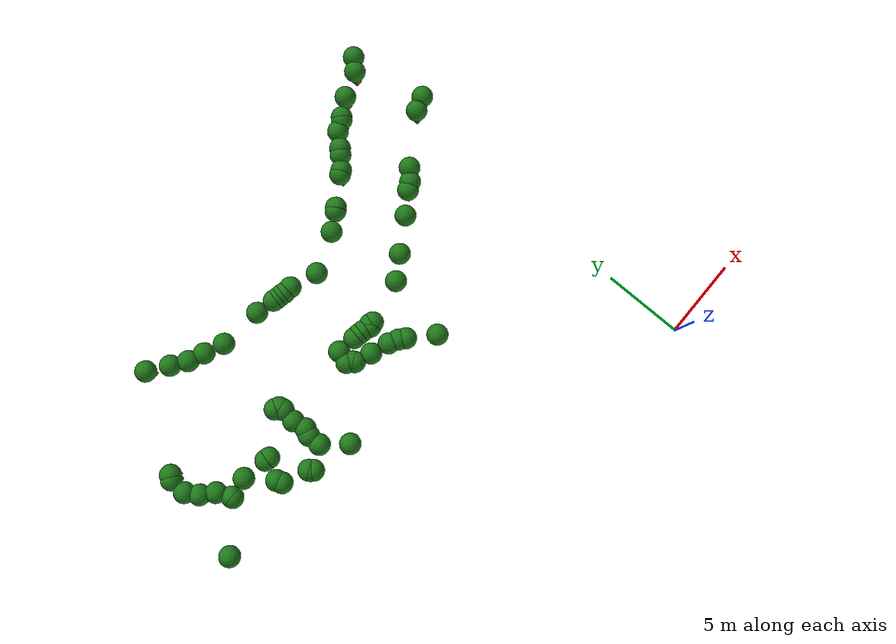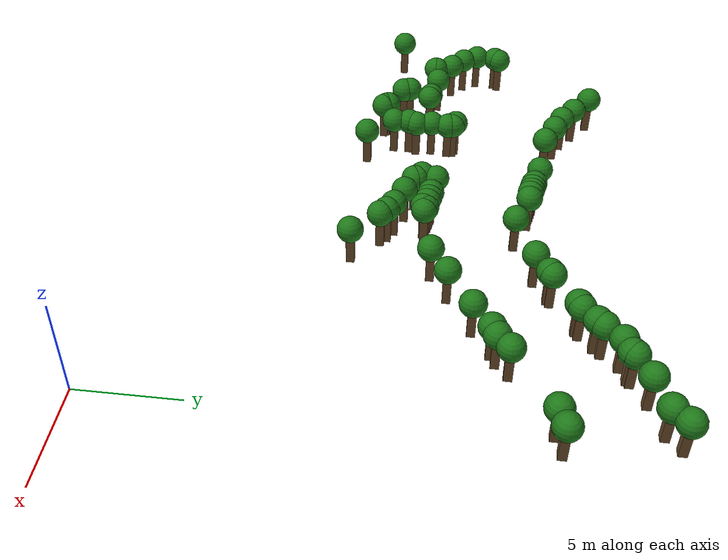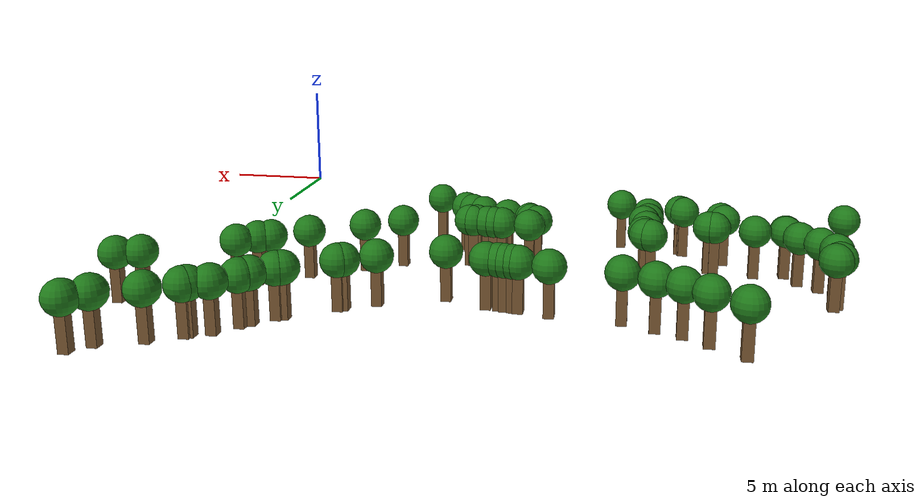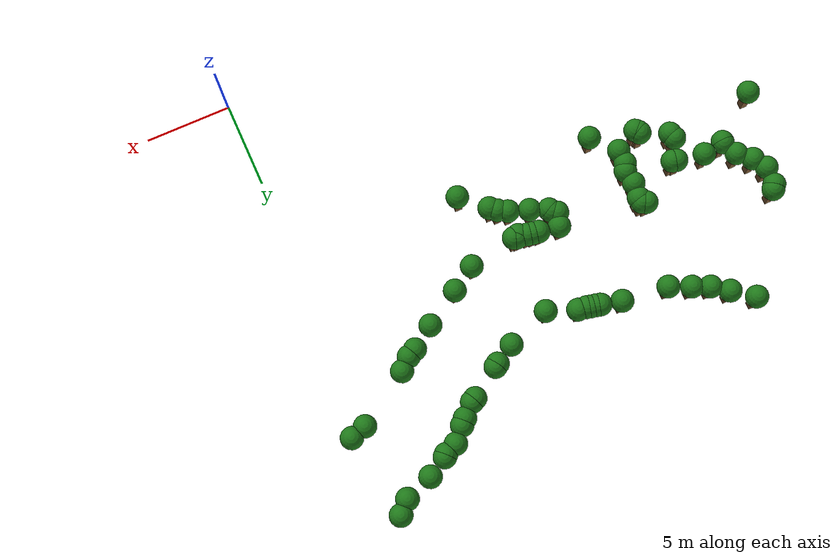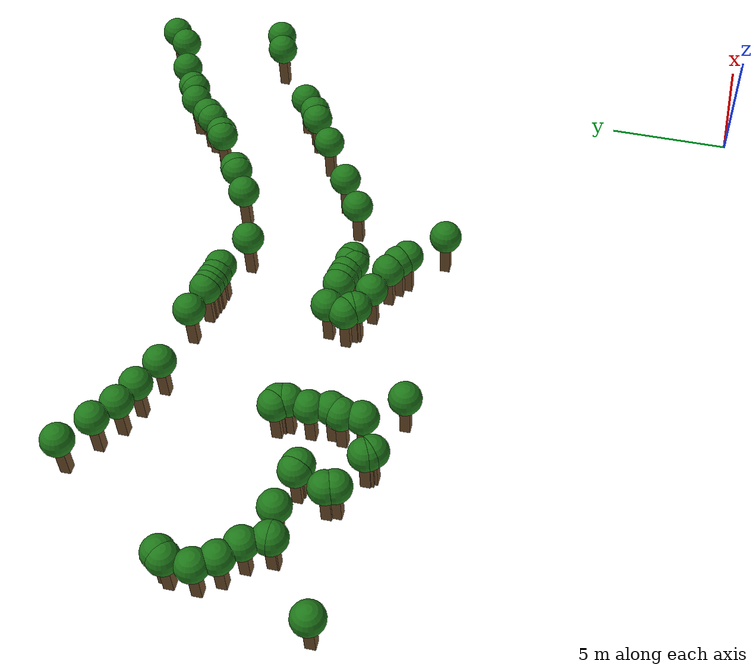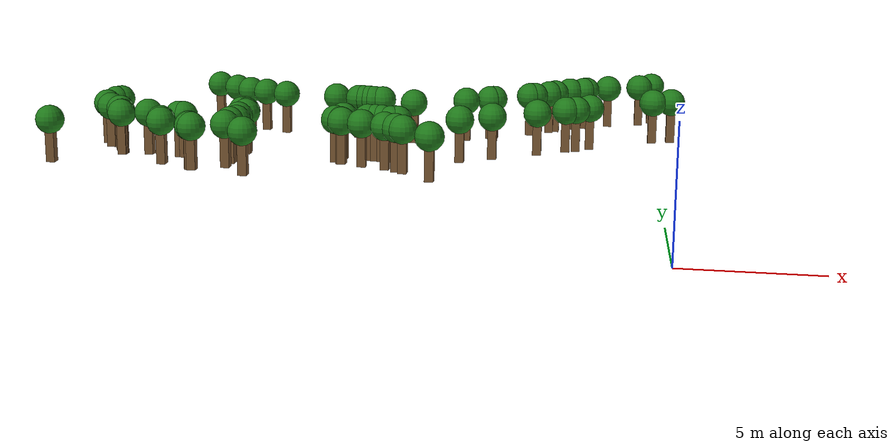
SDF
<sdf version="1.8">
 <model name="bush_trail_nav_walls">
  <static>true</static>
  <link name="trail_wall_20">
   <pose>0.205 25.601 0.750 0 0 0</pose>
   <collision name="c"><geometry><box><size>0.400 0.400 1.500</size></box></geometry></collision>
   <visual name="v">
    <geometry><box><size>0.400 0.400 1.500</size></box></geometry>
    <material><ambient>0.35 0.25 0.15 1</ambient><diffuse>0.45 0.32 0.18 1</diffuse></material>
   </visual>
   <visual name="leaves">
    <pose>0 0 1.200 0 0 0</pose>
    <geometry><sphere><radius>0.650</radius></sphere></geometry>
    <material><ambient>0.08 0.35 0.08 1</ambient><diffuse>0.12 0.48 0.10 1</diffuse></material>
   </visual>
  </link>
  <link name="trail_wall_22">
   <pose>-0.440 24.956 0.750 0 0 0</pose>
   <collision name="c"><geometry><box><size>0.400 0.400 1.500</size></box></geometry></collision>
   <visual name="v">
    <geometry><box><size>0.400 0.400 1.500</size></box></geometry>
    <material><ambient>0.35 0.25 0.15 1</ambient><diffuse>0.45 0.32 0.18 1</diffuse></material>
   </visual>
   <visual name="leaves">
    <pose>0 0 1.200 0 0 0</pose>
    <geometry><sphere><radius>0.650</radius></sphere></geometry>
    <material><ambient>0.08 0.35 0.08 1</ambient><diffuse>0.12 0.48 0.10 1</diffuse></material>
   </visual>
  </link>
  <link name="trail_wall_25">
   <pose>-2.023 24.370 0.750 0 0 0</pose>
   <collision name="c"><geometry><box><size>0.400 0.400 1.500</size></box></geometry></collision>
   <visual name="v">
    <geometry><box><size>0.400 0.400 1.500</size></box></geometry>
    <material><ambient>0.35 0.25 0.15 1</ambient><diffuse>0.45 0.32 0.18 1</diffuse></material>
   </visual>
   <visual name="leaves">
    <pose>0 0 1.200 0 0 0</pose>
    <geometry><sphere><radius>0.650</radius></sphere></geometry>
    <material><ambient>0.08 0.35 0.08 1</ambient><diffuse>0.12 0.48 0.10 1</diffuse></material>
   </visual>
  </link>
  <link name="trail_wall_29">
   <pose>-3.138 23.724 0.750 0 0 0</pose>
   <collision name="c"><geometry><box><size>0.400 0.400 1.500</size></box></geometry></collision>
   <visual name="v">
    <geometry><box><size>0.400 0.400 1.500</size></box></geometry>
    <material><ambient>0.35 0.25 0.15 1</ambient><diffuse>0.45 0.32 0.18 1</diffuse></material>
   </visual>
   <visual name="leaves">
    <pose>0 0 1.200 0 0 0</pose>
    <geometry><sphere><radius>0.650</radius></sphere></geometry>
    <material><ambient>0.08 0.35 0.08 1</ambient><diffuse>0.12 0.48 0.10 1</diffuse></material>
   </visual>
  </link>
  <link name="trail_wall_30">
   <pose>-3.255 23.607 0.750 0 0 0</pose>
   <collision name="c"><geometry><box><size>0.400 0.400 1.500</size></box></geometry></collision>
   <visual name="v">
    <geometry><box><size>0.400 0.400 1.500</size></box></geometry>
    <material><ambient>0.35 0.25 0.15 1</ambient><diffuse>0.45 0.32 0.18 1</diffuse></material>
   </visual>
   <visual name="leaves">
    <pose>0 0 1.200 0 0 0</pose>
    <geometry><sphere><radius>0.650</radius></sphere></geometry>
    <material><ambient>0.08 0.35 0.08 1</ambient><diffuse>0.12 0.48 0.10 1</diffuse></material>
   </visual>
  </link>
  <link name="trail_wall_34">
   <pose>-3.959 23.314 0.750 0 0 0</pose>
   <collision name="c"><geometry><box><size>0.400 0.400 1.500</size></box></geometry></collision>
   <visual name="v">
    <geometry><box><size>0.400 0.400 1.500</size></box></geometry>
    <material><ambient>0.35 0.25 0.15 1</ambient><diffuse>0.45 0.32 0.18 1</diffuse></material>
   </visual>
   <visual name="leaves">
    <pose>0 0 1.200 0 0 0</pose>
    <geometry><sphere><radius>0.650</radius></sphere></geometry>
    <material><ambient>0.08 0.35 0.08 1</ambient><diffuse>0.12 0.48 0.10 1</diffuse></material>
   </visual>
  </link>
  <link name="trail_wall_45">
   <pose>-22.199 22.610 0.750 0 0 0</pose>
   <collision name="c"><geometry><box><size>0.400 0.400 1.500</size></box></geometry></collision>
   <visual name="v">
    <geometry><box><size>0.400 0.400 1.500</size></box></geometry>
    <material><ambient>0.35 0.25 0.15 1</ambient><diffuse>0.45 0.32 0.18 1</diffuse></material>
   </visual>
   <visual name="leaves">
    <pose>0 0 1.200 0 0 0</pose>
    <geometry><sphere><radius>0.650</radius></sphere></geometry>
    <material><ambient>0.08 0.35 0.08 1</ambient><diffuse>0.12 0.48 0.10 1</diffuse></material>
   </visual>
  </link>
  <link name="trail_wall_46">
   <pose>-4.663 22.551 0.750 0 0 0</pose>
   <collision name="c"><geometry><box><size>0.400 0.400 1.500</size></box></geometry></collision>
   <visual name="v">
    <geometry><box><size>0.400 0.400 1.500</size></box></geometry>
    <material><ambient>0.35 0.25 0.15 1</ambient><diffuse>0.45 0.32 0.18 1</diffuse></material>
   </visual>
   <visual name="leaves">
    <pose>0 0 1.200 0 0 0</pose>
    <geometry><sphere><radius>0.650</radius></sphere></geometry>
    <material><ambient>0.08 0.35 0.08 1</ambient><diffuse>0.12 0.48 0.10 1</diffuse></material>
   </visual>
  </link>
  <link name="trail_wall_49">
   <pose>-4.956 22.258 0.750 0 0 0</pose>
   <collision name="c"><geometry><box><size>0.400 0.400 1.500</size></box></geometry></collision>
   <visual name="v">
    <geometry><box><size>0.400 0.400 1.500</size></box></geometry>
    <material><ambient>0.35 0.25 0.15 1</ambient><diffuse>0.45 0.32 0.18 1</diffuse></material>
   </visual>
   <visual name="leaves">
    <pose>0 0 1.200 0 0 0</pose>
    <geometry><sphere><radius>0.650</radius></sphere></geometry>
    <material><ambient>0.08 0.35 0.08 1</ambient><diffuse>0.12 0.48 0.10 1</diffuse></material>
   </visual>
  </link>
  <link name="trail_wall_53">
   <pose>-21.026 21.730 0.750 0 0 0</pose>
   <collision name="c"><geometry><box><size>0.400 0.400 1.500</size></box></geometry></collision>
   <visual name="v">
    <geometry><box><size>0.400 0.400 1.500</size></box></geometry>
    <material><ambient>0.35 0.25 0.15 1</ambient><diffuse>0.45 0.32 0.18 1</diffuse></material>
   </visual>
   <visual name="leaves">
    <pose>0 0 1.200 0 0 0</pose>
    <geometry><sphere><radius>0.650</radius></sphere></geometry>
    <material><ambient>0.08 0.35 0.08 1</ambient><diffuse>0.12 0.48 0.10 1</diffuse></material>
   </visual>
  </link>
  <link name="trail_wall_54">
   <pose>-5.660 21.613 0.750 0 0 0</pose>
   <collision name="c"><geometry><box><size>0.400 0.400 1.500</size></box></geometry></collision>
   <visual name="v">
    <geometry><box><size>0.400 0.400 1.500</size></box></geometry>
    <material><ambient>0.35 0.25 0.15 1</ambient><diffuse>0.45 0.32 0.18 1</diffuse></material>
   </visual>
   <visual name="leaves">
    <pose>0 0 1.200 0 0 0</pose>
    <geometry><sphere><radius>0.650</radius></sphere></geometry>
    <material><ambient>0.08 0.35 0.08 1</ambient><diffuse>0.12 0.48 0.10 1</diffuse></material>
   </visual>
  </link>
  <link name="trail_wall_55">
   <pose>-5.894 21.496 0.750 0 0 0</pose>
   <collision name="c"><geometry><box><size>0.400 0.400 1.500</size></box></geometry></collision>
   <visual name="v">
    <geometry><box><size>0.400 0.400 1.500</size></box></geometry>
    <material><ambient>0.35 0.25 0.15 1</ambient><diffuse>0.45 0.32 0.18 1</diffuse></material>
   </visual>
   <visual name="leaves">
    <pose>0 0 1.200 0 0 0</pose>
    <geometry><sphere><radius>0.650</radius></sphere></geometry>
    <material><ambient>0.08 0.35 0.08 1</ambient><diffuse>0.12 0.48 0.10 1</diffuse></material>
   </visual>
  </link>
  <link name="trail_wall_59">
   <pose>-20.147 21.085 0.750 0 0 0</pose>
   <collision name="c"><geometry><box><size>0.400 0.400 1.500</size></box></geometry></collision>
   <visual name="v">
    <geometry><box><size>0.400 0.400 1.500</size></box></geometry>
    <material><ambient>0.35 0.25 0.15 1</ambient><diffuse>0.45 0.32 0.18 1</diffuse></material>
   </visual>
   <visual name="leaves">
    <pose>0 0 1.200 0 0 0</pose>
    <geometry><sphere><radius>0.650</radius></sphere></geometry>
    <material><ambient>0.08 0.35 0.08 1</ambient><diffuse>0.12 0.48 0.10 1</diffuse></material>
   </visual>
  </link>
  <link name="trail_wall_62">
   <pose>0.968 20.792 0.750 0 0 0</pose>
   <collision name="c"><geometry><box><size>0.400 0.400 1.500</size></box></geometry></collision>
   <visual name="v">
    <geometry><box><size>0.400 0.400 1.500</size></box></geometry>
    <material><ambient>0.35 0.25 0.15 1</ambient><diffuse>0.45 0.32 0.18 1</diffuse></material>
   </visual>
   <visual name="leaves">
    <pose>0 0 1.200 0 0 0</pose>
    <geometry><sphere><radius>0.650</radius></sphere></geometry>
    <material><ambient>0.08 0.35 0.08 1</ambient><diffuse>0.12 0.48 0.10 1</diffuse></material>
   </visual>
  </link>
  <link name="trail_wall_63">
   <pose>-19.208 20.674 0.750 0 0 0</pose>
   <collision name="c"><geometry><box><size>0.400 0.400 1.500</size></box></geometry></collision>
   <visual name="v">
    <geometry><box><size>0.400 0.400 1.500</size></box></geometry>
    <material><ambient>0.35 0.25 0.15 1</ambient><diffuse>0.45 0.32 0.18 1</diffuse></material>
   </visual>
   <visual name="leaves">
    <pose>0 0 1.200 0 0 0</pose>
    <geometry><sphere><radius>0.650</radius></sphere></geometry>
    <material><ambient>0.08 0.35 0.08 1</ambient><diffuse>0.12 0.48 0.10 1</diffuse></material>
   </visual>
  </link>
  <link name="trail_wall_65">
   <pose>0.088 20.499 0.750 0 0 0</pose>
   <collision name="c"><geometry><box><size>0.400 0.400 1.500</size></box></geometry></collision>
   <visual name="v">
    <geometry><box><size>0.400 0.400 1.500</size></box></geometry>
    <material><ambient>0.35 0.25 0.15 1</ambient><diffuse>0.45 0.32 0.18 1</diffuse></material>
   </visual>
   <visual name="leaves">
    <pose>0 0 1.200 0 0 0</pose>
    <geometry><sphere><radius>0.650</radius></sphere></geometry>
    <material><ambient>0.08 0.35 0.08 1</ambient><diffuse>0.12 0.48 0.10 1</diffuse></material>
   </visual>
  </link>
  <link name="trail_wall_66">
   <pose>-7.595 20.381 0.750 0 0 0</pose>
   <collision name="c"><geometry><box><size>0.400 0.400 1.500</size></box></geometry></collision>
   <visual name="v">
    <geometry><box><size>0.400 0.400 1.500</size></box></geometry>
    <material><ambient>0.35 0.25 0.15 1</ambient><diffuse>0.45 0.32 0.18 1</diffuse></material>
   </visual>
   <visual name="leaves">
    <pose>0 0 1.200 0 0 0</pose>
    <geometry><sphere><radius>0.650</radius></sphere></geometry>
    <material><ambient>0.08 0.35 0.08 1</ambient><diffuse>0.12 0.48 0.10 1</diffuse></material>
   </visual>
  </link>
  <link name="trail_wall_67">
   <pose>-7.771 20.264 0.750 0 0 0</pose>
   <collision name="c"><geometry><box><size>0.400 0.400 1.500</size></box></geometry></collision>
   <visual name="v">
    <geometry><box><size>0.400 0.400 1.500</size></box></geometry>
    <material><ambient>0.35 0.25 0.15 1</ambient><diffuse>0.45 0.32 0.18 1</diffuse></material>
   </visual>
   <visual name="leaves">
    <pose>0 0 1.200 0 0 0</pose>
    <geometry><sphere><radius>0.650</radius></sphere></geometry>
    <material><ambient>0.08 0.35 0.08 1</ambient><diffuse>0.12 0.48 0.10 1</diffuse></material>
   </visual>
  </link>
  <link name="trail_wall_68">
   <pose>-18.035 20.147 0.750 0 0 0</pose>
   <collision name="c"><geometry><box><size>0.400 0.400 1.500</size></box></geometry></collision>
   <visual name="v">
    <geometry><box><size>0.400 0.400 1.500</size></box></geometry>
    <material><ambient>0.35 0.25 0.15 1</ambient><diffuse>0.45 0.32 0.18 1</diffuse></material>
   </visual>
   <visual name="leaves">
    <pose>0 0 1.200 0 0 0</pose>
    <geometry><sphere><radius>0.650</radius></sphere></geometry>
    <material><ambient>0.08 0.35 0.08 1</ambient><diffuse>0.12 0.48 0.10 1</diffuse></material>
   </visual>
  </link>
  <link name="trail_wall_72">
   <pose>-15.396 19.853 0.750 0 0 0</pose>
   <collision name="c"><geometry><box><size>0.400 0.400 1.500</size></box></geometry></collision>
   <visual name="v">
    <geometry><box><size>0.400 0.400 1.500</size></box></geometry>
    <material><ambient>0.35 0.25 0.15 1</ambient><diffuse>0.45 0.32 0.18 1</diffuse></material>
   </visual>
   <visual name="leaves">
    <pose>0 0 1.200 0 0 0</pose>
    <geometry><sphere><radius>0.650</radius></sphere></geometry>
    <material><ambient>0.08 0.35 0.08 1</ambient><diffuse>0.12 0.48 0.10 1</diffuse></material>
   </visual>
  </link>
  <link name="trail_wall_76">
   <pose>-8.886 19.619 0.750 0 0 0</pose>
   <collision name="c"><geometry><box><size>0.400 0.400 1.500</size></box></geometry></collision>
   <visual name="v">
    <geometry><box><size>0.400 0.400 1.500</size></box></geometry>
    <material><ambient>0.35 0.25 0.15 1</ambient><diffuse>0.45 0.32 0.18 1</diffuse></material>
   </visual>
   <visual name="leaves">
    <pose>0 0 1.200 0 0 0</pose>
    <geometry><sphere><radius>0.650</radius></sphere></geometry>
    <material><ambient>0.08 0.35 0.08 1</ambient><diffuse>0.12 0.48 0.10 1</diffuse></material>
   </visual>
  </link>
  <link name="trail_wall_77">
   <pose>-14.223 19.560 0.750 0 0 0</pose>
   <collision name="c"><geometry><box><size>0.400 0.400 1.500</size></box></geometry></collision>
   <visual name="v">
    <geometry><box><size>0.400 0.400 1.500</size></box></geometry>
    <material><ambient>0.35 0.25 0.15 1</ambient><diffuse>0.45 0.32 0.18 1</diffuse></material>
   </visual>
   <visual name="leaves">
    <pose>0 0 1.200 0 0 0</pose>
    <geometry><sphere><radius>0.650</radius></sphere></geometry>
    <material><ambient>0.08 0.35 0.08 1</ambient><diffuse>0.12 0.48 0.10 1</diffuse></material>
   </visual>
  </link>
  <link name="trail_wall_78">
   <pose>-13.988 19.501 0.750 0 0 0</pose>
   <collision name="c"><geometry><box><size>0.400 0.400 1.500</size></box></geometry></collision>
   <visual name="v">
    <geometry><box><size>0.400 0.400 1.500</size></box></geometry>
    <material><ambient>0.35 0.25 0.15 1</ambient><diffuse>0.45 0.32 0.18 1</diffuse></material>
   </visual>
   <visual name="leaves">
    <pose>0 0 1.200 0 0 0</pose>
    <geometry><sphere><radius>0.650</radius></sphere></geometry>
    <material><ambient>0.08 0.35 0.08 1</ambient><diffuse>0.12 0.48 0.10 1</diffuse></material>
   </visual>
  </link>
  <link name="trail_wall_79">
   <pose>-13.695 19.443 0.750 0 0 0</pose>
   <collision name="c"><geometry><box><size>0.400 0.400 1.500</size></box></geometry></collision>
   <visual name="v">
    <geometry><box><size>0.400 0.400 1.500</size></box></geometry>
    <material><ambient>0.35 0.25 0.15 1</ambient><diffuse>0.45 0.32 0.18 1</diffuse></material>
   </visual>
   <visual name="leaves">
    <pose>0 0 1.200 0 0 0</pose>
    <geometry><sphere><radius>0.650</radius></sphere></geometry>
    <material><ambient>0.08 0.35 0.08 1</ambient><diffuse>0.12 0.48 0.10 1</diffuse></material>
   </visual>
  </link>
  <link name="trail_wall_80">
   <pose>-13.460 19.384 0.750 0 0 0</pose>
   <collision name="c"><geometry><box><size>0.400 0.400 1.500</size></box></geometry></collision>
   <visual name="v">
    <geometry><box><size>0.400 0.400 1.500</size></box></geometry>
    <material><ambient>0.35 0.25 0.15 1</ambient><diffuse>0.45 0.32 0.18 1</diffuse></material>
   </visual>
   <visual name="leaves">
    <pose>0 0 1.200 0 0 0</pose>
    <geometry><sphere><radius>0.650</radius></sphere></geometry>
    <material><ambient>0.08 0.35 0.08 1</ambient><diffuse>0.12 0.48 0.10 1</diffuse></material>
   </visual>
  </link>
  <link name="trail_wall_81">
   <pose>-12.991 19.326 0.750 0 0 0</pose>
   <collision name="c"><geometry><box><size>0.400 0.400 1.500</size></box></geometry></collision>
   <visual name="v">
    <geometry><box><size>0.400 0.400 1.500</size></box></geometry>
    <material><ambient>0.35 0.25 0.15 1</ambient><diffuse>0.45 0.32 0.18 1</diffuse></material>
   </visual>
   <visual name="leaves">
    <pose>0 0 1.200 0 0 0</pose>
    <geometry><sphere><radius>0.650</radius></sphere></geometry>
    <material><ambient>0.08 0.35 0.08 1</ambient><diffuse>0.12 0.48 0.10 1</diffuse></material>
   </visual>
  </link>
  <link name="trail_wall_87">
   <pose>-11.349 18.680 0.750 0 0 0</pose>
   <collision name="c"><geometry><box><size>0.400 0.400 1.500</size></box></geometry></collision>
   <visual name="v">
    <geometry><box><size>0.400 0.400 1.500</size></box></geometry>
    <material><ambient>0.35 0.25 0.15 1</ambient><diffuse>0.45 0.32 0.18 1</diffuse></material>
   </visual>
   <visual name="leaves">
    <pose>0 0 1.200 0 0 0</pose>
    <geometry><sphere><radius>0.650</radius></sphere></geometry>
    <material><ambient>0.08 0.35 0.08 1</ambient><diffuse>0.12 0.48 0.10 1</diffuse></material>
   </visual>
  </link>
  <link name="trail_wall_88">
   <pose>-2.903 18.563 0.750 0 0 0</pose>
   <collision name="c"><geometry><box><size>0.400 0.400 1.500</size></box></geometry></collision>
   <visual name="v">
    <geometry><box><size>0.400 0.400 1.500</size></box></geometry>
    <material><ambient>0.35 0.25 0.15 1</ambient><diffuse>0.45 0.32 0.18 1</diffuse></material>
   </visual>
   <visual name="leaves">
    <pose>0 0 1.200 0 0 0</pose>
    <geometry><sphere><radius>0.650</radius></sphere></geometry>
    <material><ambient>0.08 0.35 0.08 1</ambient><diffuse>0.12 0.48 0.10 1</diffuse></material>
   </visual>
  </link>
  <link name="trail_wall_92">
   <pose>-3.548 17.977 0.750 0 0 0</pose>
   <collision name="c"><geometry><box><size>0.400 0.400 1.500</size></box></geometry></collision>
   <visual name="v">
    <geometry><box><size>0.400 0.400 1.500</size></box></geometry>
    <material><ambient>0.35 0.25 0.15 1</ambient><diffuse>0.45 0.32 0.18 1</diffuse></material>
   </visual>
   <visual name="leaves">
    <pose>0 0 1.200 0 0 0</pose>
    <geometry><sphere><radius>0.650</radius></sphere></geometry>
    <material><ambient>0.08 0.35 0.08 1</ambient><diffuse>0.12 0.48 0.10 1</diffuse></material>
   </visual>
  </link>
  <link name="trail_wall_93">
   <pose>-4.018 17.742 0.750 0 0 0</pose>
   <collision name="c"><geometry><box><size>0.400 0.400 1.500</size></box></geometry></collision>
   <visual name="v">
    <geometry><box><size>0.400 0.400 1.500</size></box></geometry>
    <material><ambient>0.35 0.25 0.15 1</ambient><diffuse>0.45 0.32 0.18 1</diffuse></material>
   </visual>
   <visual name="leaves">
    <pose>0 0 1.200 0 0 0</pose>
    <geometry><sphere><radius>0.650</radius></sphere></geometry>
    <material><ambient>0.08 0.35 0.08 1</ambient><diffuse>0.12 0.48 0.10 1</diffuse></material>
   </visual>
  </link>
  <link name="trail_wall_94">
   <pose>-25.777 17.507 0.750 0 0 0</pose>
   <collision name="c"><geometry><box><size>0.400 0.400 1.500</size></box></geometry></collision>
   <visual name="v">
    <geometry><box><size>0.400 0.400 1.500</size></box></geometry>
    <material><ambient>0.35 0.25 0.15 1</ambient><diffuse>0.45 0.32 0.18 1</diffuse></material>
   </visual>
   <visual name="leaves">
    <pose>0 0 1.200 0 0 0</pose>
    <geometry><sphere><radius>0.650</radius></sphere></geometry>
    <material><ambient>0.08 0.35 0.08 1</ambient><diffuse>0.12 0.48 0.10 1</diffuse></material>
   </visual>
  </link>
  <link name="trail_wall_95">
   <pose>-25.953 17.273 0.750 0 0 0</pose>
   <collision name="c"><geometry><box><size>0.400 0.400 1.500</size></box></geometry></collision>
   <visual name="v">
    <geometry><box><size>0.400 0.400 1.500</size></box></geometry>
    <material><ambient>0.35 0.25 0.15 1</ambient><diffuse>0.45 0.32 0.18 1</diffuse></material>
   </visual>
   <visual name="leaves">
    <pose>0 0 1.200 0 0 0</pose>
    <geometry><sphere><radius>0.650</radius></sphere></geometry>
    <material><ambient>0.08 0.35 0.08 1</ambient><diffuse>0.12 0.48 0.10 1</diffuse></material>
   </visual>
  </link>
  <link name="trail_wall_97">
   <pose>-5.308 16.862 0.750 0 0 0</pose>
   <collision name="c"><geometry><box><size>0.400 0.400 1.500</size></box></geometry></collision>
   <visual name="v">
    <geometry><box><size>0.400 0.400 1.500</size></box></geometry>
    <material><ambient>0.35 0.25 0.15 1</ambient><diffuse>0.45 0.32 0.18 1</diffuse></material>
   </visual>
   <visual name="leaves">
    <pose>0 0 1.200 0 0 0</pose>
    <geometry><sphere><radius>0.650</radius></sphere></geometry>
    <material><ambient>0.08 0.35 0.08 1</ambient><diffuse>0.12 0.48 0.10 1</diffuse></material>
   </visual>
  </link>
  <link name="trail_wall_100">
   <pose>-26.012 16.217 0.750 0 0 0</pose>
   <collision name="c"><geometry><box><size>0.400 0.400 1.500</size></box></geometry></collision>
   <visual name="v">
    <geometry><box><size>0.400 0.400 1.500</size></box></geometry>
    <material><ambient>0.35 0.25 0.15 1</ambient><diffuse>0.45 0.32 0.18 1</diffuse></material>
   </visual>
   <visual name="leaves">
    <pose>0 0 1.200 0 0 0</pose>
    <geometry><sphere><radius>0.650</radius></sphere></geometry>
    <material><ambient>0.08 0.35 0.08 1</ambient><diffuse>0.12 0.48 0.10 1</diffuse></material>
   </visual>
  </link>
  <link name="trail_wall_103">
   <pose>-7.302 15.630 0.750 0 0 0</pose>
   <collision name="c"><geometry><box><size>0.400 0.400 1.500</size></box></geometry></collision>
   <visual name="v">
    <geometry><box><size>0.400 0.400 1.500</size></box></geometry>
    <material><ambient>0.35 0.25 0.15 1</ambient><diffuse>0.45 0.32 0.18 1</diffuse></material>
   </visual>
   <visual name="leaves">
    <pose>0 0 1.200 0 0 0</pose>
    <geometry><sphere><radius>0.650</radius></sphere></geometry>
    <material><ambient>0.08 0.35 0.08 1</ambient><diffuse>0.12 0.48 0.10 1</diffuse></material>
   </visual>
  </link>
  <link name="trail_wall_104">
   <pose>-25.543 15.455 0.750 0 0 0</pose>
   <collision name="c"><geometry><box><size>0.400 0.400 1.500</size></box></geometry></collision>
   <visual name="v">
    <geometry><box><size>0.400 0.400 1.500</size></box></geometry>
    <material><ambient>0.35 0.25 0.15 1</ambient><diffuse>0.45 0.32 0.18 1</diffuse></material>
   </visual>
   <visual name="leaves">
    <pose>0 0 1.200 0 0 0</pose>
    <geometry><sphere><radius>0.650</radius></sphere></geometry>
    <material><ambient>0.08 0.35 0.08 1</ambient><diffuse>0.12 0.48 0.10 1</diffuse></material>
   </visual>
  </link>
  <link name="trail_wall_105">
   <pose>-19.032 15.337 0.750 0 0 0</pose>
   <collision name="c"><geometry><box><size>0.400 0.400 1.500</size></box></geometry></collision>
   <visual name="v">
    <geometry><box><size>0.400 0.400 1.500</size></box></geometry>
    <material><ambient>0.35 0.25 0.15 1</ambient><diffuse>0.45 0.32 0.18 1</diffuse></material>
   </visual>
   <visual name="leaves">
    <pose>0 0 1.200 0 0 0</pose>
    <geometry><sphere><radius>0.650</radius></sphere></geometry>
    <material><ambient>0.08 0.35 0.08 1</ambient><diffuse>0.12 0.48 0.10 1</diffuse></material>
   </visual>
  </link>
  <link name="trail_wall_106">
   <pose>-18.798 15.220 0.750 0 0 0</pose>
   <collision name="c"><geometry><box><size>0.400 0.400 1.500</size></box></geometry></collision>
   <visual name="v">
    <geometry><box><size>0.400 0.400 1.500</size></box></geometry>
    <material><ambient>0.35 0.25 0.15 1</ambient><diffuse>0.45 0.32 0.18 1</diffuse></material>
   </visual>
   <visual name="leaves">
    <pose>0 0 1.200 0 0 0</pose>
    <geometry><sphere><radius>0.650</radius></sphere></geometry>
    <material><ambient>0.08 0.35 0.08 1</ambient><diffuse>0.12 0.48 0.10 1</diffuse></material>
   </visual>
  </link>
  <link name="trail_wall_108">
   <pose>-18.739 14.927 0.750 0 0 0</pose>
   <collision name="c"><geometry><box><size>0.400 0.400 1.500</size></box></geometry></collision>
   <visual name="v">
    <geometry><box><size>0.400 0.400 1.500</size></box></geometry>
    <material><ambient>0.35 0.25 0.15 1</ambient><diffuse>0.45 0.32 0.18 1</diffuse></material>
   </visual>
   <visual name="leaves">
    <pose>0 0 1.200 0 0 0</pose>
    <geometry><sphere><radius>0.650</radius></sphere></geometry>
    <material><ambient>0.08 0.35 0.08 1</ambient><diffuse>0.12 0.48 0.10 1</diffuse></material>
   </visual>
  </link>
  <link name="trail_wall_109">
   <pose>-24.839 14.809 0.750 0 0 0</pose>
   <collision name="c"><geometry><box><size>0.400 0.400 1.500</size></box></geometry></collision>
   <visual name="v">
    <geometry><box><size>0.400 0.400 1.500</size></box></geometry>
    <material><ambient>0.35 0.25 0.15 1</ambient><diffuse>0.45 0.32 0.18 1</diffuse></material>
   </visual>
   <visual name="leaves">
    <pose>0 0 1.200 0 0 0</pose>
    <geometry><sphere><radius>0.650</radius></sphere></geometry>
    <material><ambient>0.08 0.35 0.08 1</ambient><diffuse>0.12 0.48 0.10 1</diffuse></material>
   </visual>
  </link>
  <link name="trail_wall_110">
   <pose>-8.710 14.751 0.750 0 0 0</pose>
   <collision name="c"><geometry><box><size>0.400 0.400 1.500</size></box></geometry></collision>
   <visual name="v">
    <geometry><box><size>0.400 0.400 1.500</size></box></geometry>
    <material><ambient>0.35 0.25 0.15 1</ambient><diffuse>0.45 0.32 0.18 1</diffuse></material>
   </visual>
   <visual name="leaves">
    <pose>0 0 1.200 0 0 0</pose>
    <geometry><sphere><radius>0.650</radius></sphere></geometry>
    <material><ambient>0.08 0.35 0.08 1</ambient><diffuse>0.12 0.48 0.10 1</diffuse></material>
   </visual>
  </link>
  <link name="trail_wall_111">
   <pose>-14.047 14.633 0.750 0 0 0</pose>
   <collision name="c"><geometry><box><size>0.400 0.400 1.500</size></box></geometry></collision>
   <visual name="v">
    <geometry><box><size>0.400 0.400 1.500</size></box></geometry>
    <material><ambient>0.35 0.25 0.15 1</ambient><diffuse>0.45 0.32 0.18 1</diffuse></material>
   </visual>
   <visual name="leaves">
    <pose>0 0 1.200 0 0 0</pose>
    <geometry><sphere><radius>0.650</radius></sphere></geometry>
    <material><ambient>0.08 0.35 0.08 1</ambient><diffuse>0.12 0.48 0.10 1</diffuse></material>
   </visual>
  </link>
  <link name="trail_wall_113">
   <pose>-12.874 14.457 0.750 0 0 0</pose>
   <collision name="c"><geometry><box><size>0.400 0.400 1.500</size></box></geometry></collision>
   <visual name="v">
    <geometry><box><size>0.400 0.400 1.500</size></box></geometry>
    <material><ambient>0.35 0.25 0.15 1</ambient><diffuse>0.45 0.32 0.18 1</diffuse></material>
   </visual>
   <visual name="leaves">
    <pose>0 0 1.200 0 0 0</pose>
    <geometry><sphere><radius>0.650</radius></sphere></geometry>
    <material><ambient>0.08 0.35 0.08 1</ambient><diffuse>0.12 0.48 0.10 1</diffuse></material>
   </visual>
  </link>
  <link name="trail_wall_114">
   <pose>-12.522 14.399 0.750 0 0 0</pose>
   <collision name="c"><geometry><box><size>0.400 0.400 1.500</size></box></geometry></collision>
   <visual name="v">
    <geometry><box><size>0.400 0.400 1.500</size></box></geometry>
    <material><ambient>0.35 0.25 0.15 1</ambient><diffuse>0.45 0.32 0.18 1</diffuse></material>
   </visual>
   <visual name="leaves">
    <pose>0 0 1.200 0 0 0</pose>
    <geometry><sphere><radius>0.650</radius></sphere></geometry>
    <material><ambient>0.08 0.35 0.08 1</ambient><diffuse>0.12 0.48 0.10 1</diffuse></material>
   </visual>
  </link>
  <link name="trail_wall_115">
   <pose>-12.229 14.340 0.750 0 0 0</pose>
   <collision name="c"><geometry><box><size>0.400 0.400 1.500</size></box></geometry></collision>
   <visual name="v">
    <geometry><box><size>0.400 0.400 1.500</size></box></geometry>
    <material><ambient>0.35 0.25 0.15 1</ambient><diffuse>0.45 0.32 0.18 1</diffuse></material>
   </visual>
   <visual name="leaves">
    <pose>0 0 1.200 0 0 0</pose>
    <geometry><sphere><radius>0.650</radius></sphere></geometry>
    <material><ambient>0.08 0.35 0.08 1</ambient><diffuse>0.12 0.48 0.10 1</diffuse></material>
   </visual>
  </link>
  <link name="trail_wall_116">
   <pose>-11.642 14.282 0.750 0 0 0</pose>
   <collision name="c"><geometry><box><size>0.400 0.400 1.500</size></box></geometry></collision>
   <visual name="v">
    <geometry><box><size>0.400 0.400 1.500</size></box></geometry>
    <material><ambient>0.35 0.25 0.15 1</ambient><diffuse>0.45 0.32 0.18 1</diffuse></material>
   </visual>
   <visual name="leaves">
    <pose>0 0 1.200 0 0 0</pose>
    <geometry><sphere><radius>0.650</radius></sphere></geometry>
    <material><ambient>0.08 0.35 0.08 1</ambient><diffuse>0.12 0.48 0.10 1</diffuse></material>
   </visual>
  </link>
  <link name="trail_wall_117">
   <pose>-11.466 14.223 0.750 0 0 0</pose>
   <collision name="c"><geometry><box><size>0.400 0.400 1.500</size></box></geometry></collision>
   <visual name="v">
    <geometry><box><size>0.400 0.400 1.500</size></box></geometry>
    <material><ambient>0.35 0.25 0.15 1</ambient><diffuse>0.45 0.32 0.18 1</diffuse></material>
   </visual>
   <visual name="leaves">
    <pose>0 0 1.200 0 0 0</pose>
    <geometry><sphere><radius>0.650</radius></sphere></geometry>
    <material><ambient>0.08 0.35 0.08 1</ambient><diffuse>0.12 0.48 0.10 1</diffuse></material>
   </visual>
  </link>
  <link name="trail_wall_118">
   <pose>-11.760 14.164 0.750 0 0 0</pose>
   <collision name="c"><geometry><box><size>0.400 0.400 1.500</size></box></geometry></collision>
   <visual name="v">
    <geometry><box><size>0.400 0.400 1.500</size></box></geometry>
    <material><ambient>0.35 0.25 0.15 1</ambient><diffuse>0.45 0.32 0.18 1</diffuse></material>
   </visual>
   <visual name="leaves">
    <pose>0 0 1.200 0 0 0</pose>
    <geometry><sphere><radius>0.650</radius></sphere></geometry>
    <material><ambient>0.08 0.35 0.08 1</ambient><diffuse>0.12 0.48 0.10 1</diffuse></material>
   </visual>
  </link>
  <link name="trail_wall_119">
   <pose>-23.196 14.106 0.750 0 0 0</pose>
   <collision name="c"><geometry><box><size>0.400 0.400 1.500</size></box></geometry></collision>
   <visual name="v">
    <geometry><box><size>0.400 0.400 1.500</size></box></geometry>
    <material><ambient>0.35 0.25 0.15 1</ambient><diffuse>0.45 0.32 0.18 1</diffuse></material>
   </visual>
   <visual name="leaves">
    <pose>0 0 1.200 0 0 0</pose>
    <geometry><sphere><radius>0.650</radius></sphere></geometry>
    <material><ambient>0.08 0.35 0.08 1</ambient><diffuse>0.12 0.48 0.10 1</diffuse></material>
   </visual>
  </link>
  <link name="trail_wall_120">
   <pose>-18.856 14.047 0.750 0 0 0</pose>
   <collision name="c"><geometry><box><size>0.400 0.400 1.500</size></box></geometry></collision>
   <visual name="v">
    <geometry><box><size>0.400 0.400 1.500</size></box></geometry>
    <material><ambient>0.35 0.25 0.15 1</ambient><diffuse>0.45 0.32 0.18 1</diffuse></material>
   </visual>
   <visual name="leaves">
    <pose>0 0 1.200 0 0 0</pose>
    <geometry><sphere><radius>0.650</radius></sphere></geometry>
    <material><ambient>0.08 0.35 0.08 1</ambient><diffuse>0.12 0.48 0.10 1</diffuse></material>
   </visual>
  </link>
  <link name="trail_wall_121">
   <pose>-24.428 13.930 0.750 0 0 0</pose>
   <collision name="c"><geometry><box><size>0.400 0.400 1.500</size></box></geometry></collision>
   <visual name="v">
    <geometry><box><size>0.400 0.400 1.500</size></box></geometry>
    <material><ambient>0.35 0.25 0.15 1</ambient><diffuse>0.45 0.32 0.18 1</diffuse></material>
   </visual>
   <visual name="leaves">
    <pose>0 0 1.200 0 0 0</pose>
    <geometry><sphere><radius>0.650</radius></sphere></geometry>
    <material><ambient>0.08 0.35 0.08 1</ambient><diffuse>0.12 0.48 0.10 1</diffuse></material>
   </visual>
  </link>
  <link name="trail_wall_122">
   <pose>-24.428 13.871 0.750 0 0 0</pose>
   <collision name="c"><geometry><box><size>0.400 0.400 1.500</size></box></geometry></collision>
   <visual name="v">
    <geometry><box><size>0.400 0.400 1.500</size></box></geometry>
    <material><ambient>0.35 0.25 0.15 1</ambient><diffuse>0.45 0.32 0.18 1</diffuse></material>
   </visual>
   <visual name="leaves">
    <pose>0 0 1.200 0 0 0</pose>
    <geometry><sphere><radius>0.650</radius></sphere></geometry>
    <material><ambient>0.08 0.35 0.08 1</ambient><diffuse>0.12 0.48 0.10 1</diffuse></material>
   </visual>
  </link>
  <link name="trail_wall_123">
   <pose>-14.282 13.871 0.750 0 0 0</pose>
   <collision name="c"><geometry><box><size>0.400 0.400 1.500</size></box></geometry></collision>
   <visual name="v">
    <geometry><box><size>0.400 0.400 1.500</size></box></geometry>
    <material><ambient>0.35 0.25 0.15 1</ambient><diffuse>0.45 0.32 0.18 1</diffuse></material>
   </visual>
   <visual name="leaves">
    <pose>0 0 1.200 0 0 0</pose>
    <geometry><sphere><radius>0.650</radius></sphere></geometry>
    <material><ambient>0.08 0.35 0.08 1</ambient><diffuse>0.12 0.48 0.10 1</diffuse></material>
   </visual>
  </link>
  <link name="trail_wall_124">
   <pose>-21.613 13.812 0.750 0 0 0</pose>
   <collision name="c"><geometry><box><size>0.400 0.400 1.500</size></box></geometry></collision>
   <visual name="v">
    <geometry><box><size>0.400 0.400 1.500</size></box></geometry>
    <material><ambient>0.35 0.25 0.15 1</ambient><diffuse>0.45 0.32 0.18 1</diffuse></material>
   </visual>
   <visual name="leaves">
    <pose>0 0 1.200 0 0 0</pose>
    <geometry><sphere><radius>0.650</radius></sphere></geometry>
    <material><ambient>0.08 0.35 0.08 1</ambient><diffuse>0.12 0.48 0.10 1</diffuse></material>
   </visual>
  </link>
  <link name="trail_wall_125">
   <pose>-21.378 13.754 0.750 0 0 0</pose>
   <collision name="c"><geometry><box><size>0.400 0.400 1.500</size></box></geometry></collision>
   <visual name="v">
    <geometry><box><size>0.400 0.400 1.500</size></box></geometry>
    <material><ambient>0.35 0.25 0.15 1</ambient><diffuse>0.45 0.32 0.18 1</diffuse></material>
   </visual>
   <visual name="leaves">
    <pose>0 0 1.200 0 0 0</pose>
    <geometry><sphere><radius>0.650</radius></sphere></geometry>
    <material><ambient>0.08 0.35 0.08 1</ambient><diffuse>0.12 0.48 0.10 1</diffuse></material>
   </visual>
  </link>
  <link name="trail_wall_126">
   <pose>-13.988 13.636 0.750 0 0 0</pose>
   <collision name="c"><geometry><box><size>0.400 0.400 1.500</size></box></geometry></collision>
   <visual name="v">
    <geometry><box><size>0.400 0.400 1.500</size></box></geometry>
    <material><ambient>0.35 0.25 0.15 1</ambient><diffuse>0.45 0.32 0.18 1</diffuse></material>
   </visual>
   <visual name="leaves">
    <pose>0 0 1.200 0 0 0</pose>
    <geometry><sphere><radius>0.650</radius></sphere></geometry>
    <material><ambient>0.08 0.35 0.08 1</ambient><diffuse>0.12 0.48 0.10 1</diffuse></material>
   </visual>
  </link>
  <link name="trail_wall_127">
   <pose>-13.930 13.519 0.750 0 0 0</pose>
   <collision name="c"><geometry><box><size>0.400 0.400 1.500</size></box></geometry></collision>
   <visual name="v">
    <geometry><box><size>0.400 0.400 1.500</size></box></geometry>
    <material><ambient>0.35 0.25 0.15 1</ambient><diffuse>0.45 0.32 0.18 1</diffuse></material>
   </visual>
   <visual name="leaves">
    <pose>0 0 1.200 0 0 0</pose>
    <geometry><sphere><radius>0.650</radius></sphere></geometry>
    <material><ambient>0.08 0.35 0.08 1</ambient><diffuse>0.12 0.48 0.10 1</diffuse></material>
   </visual>
  </link>
  <link name="trail_wall_129">
   <pose>-18.739 13.226 0.750 0 0 0</pose>
   <collision name="c"><geometry><box><size>0.400 0.400 1.500</size></box></geometry></collision>
   <visual name="v">
    <geometry><box><size>0.400 0.400 1.500</size></box></geometry>
    <material><ambient>0.35 0.25 0.15 1</ambient><diffuse>0.45 0.32 0.18 1</diffuse></material>
   </visual>
   <visual name="leaves">
    <pose>0 0 1.200 0 0 0</pose>
    <geometry><sphere><radius>0.650</radius></sphere></geometry>
    <material><ambient>0.08 0.35 0.08 1</ambient><diffuse>0.12 0.48 0.10 1</diffuse></material>
   </visual>
  </link>
  <link name="trail_wall_130">
   <pose>-12.933 13.109 0.750 0 0 0</pose>
   <collision name="c"><geometry><box><size>0.400 0.400 1.500</size></box></geometry></collision>
   <visual name="v">
    <geometry><box><size>0.400 0.400 1.500</size></box></geometry>
    <material><ambient>0.35 0.25 0.15 1</ambient><diffuse>0.45 0.32 0.18 1</diffuse></material>
   </visual>
   <visual name="leaves">
    <pose>0 0 1.200 0 0 0</pose>
    <geometry><sphere><radius>0.650</radius></sphere></geometry>
    <material><ambient>0.08 0.35 0.08 1</ambient><diffuse>0.12 0.48 0.10 1</diffuse></material>
   </visual>
  </link>
  <link name="trail_wall_132">
   <pose>-18.915 12.815 0.750 0 0 0</pose>
   <collision name="c"><geometry><box><size>0.400 0.400 1.500</size></box></geometry></collision>
   <visual name="v">
    <geometry><box><size>0.400 0.400 1.500</size></box></geometry>
    <material><ambient>0.35 0.25 0.15 1</ambient><diffuse>0.45 0.32 0.18 1</diffuse></material>
   </visual>
   <visual name="leaves">
    <pose>0 0 1.200 0 0 0</pose>
    <geometry><sphere><radius>0.650</radius></sphere></geometry>
    <material><ambient>0.08 0.35 0.08 1</ambient><diffuse>0.12 0.48 0.10 1</diffuse></material>
   </visual>
  </link>
  <link name="trail_wall_133">
   <pose>-11.818 12.698 0.750 0 0 0</pose>
   <collision name="c"><geometry><box><size>0.400 0.400 1.500</size></box></geometry></collision>
   <visual name="v">
    <geometry><box><size>0.400 0.400 1.500</size></box></geometry>
    <material><ambient>0.35 0.25 0.15 1</ambient><diffuse>0.45 0.32 0.18 1</diffuse></material>
   </visual>
   <visual name="leaves">
    <pose>0 0 1.200 0 0 0</pose>
    <geometry><sphere><radius>0.650</radius></sphere></geometry>
    <material><ambient>0.08 0.35 0.08 1</ambient><diffuse>0.12 0.48 0.10 1</diffuse></material>
   </visual>
  </link>
  <link name="trail_wall_134">
   <pose>-22.082 12.581 0.750 0 0 0</pose>
   <collision name="c"><geometry><box><size>0.400 0.400 1.500</size></box></geometry></collision>
   <visual name="v">
    <geometry><box><size>0.400 0.400 1.500</size></box></geometry>
    <material><ambient>0.35 0.25 0.15 1</ambient><diffuse>0.45 0.32 0.18 1</diffuse></material>
   </visual>
   <visual name="leaves">
    <pose>0 0 1.200 0 0 0</pose>
    <geometry><sphere><radius>0.650</radius></sphere></geometry>
    <material><ambient>0.08 0.35 0.08 1</ambient><diffuse>0.12 0.48 0.10 1</diffuse></material>
   </visual>
  </link>
  <link name="trail_wall_136">
   <pose>-11.290 12.405 0.750 0 0 0</pose>
   <collision name="c"><geometry><box><size>0.400 0.400 1.500</size></box></geometry></collision>
   <visual name="v">
    <geometry><box><size>0.400 0.400 1.500</size></box></geometry>
    <material><ambient>0.35 0.25 0.15 1</ambient><diffuse>0.45 0.32 0.18 1</diffuse></material>
   </visual>
   <visual name="leaves">
    <pose>0 0 1.200 0 0 0</pose>
    <geometry><sphere><radius>0.650</radius></sphere></geometry>
    <material><ambient>0.08 0.35 0.08 1</ambient><diffuse>0.12 0.48 0.10 1</diffuse></material>
   </visual>
  </link>
  <link name="trail_wall_137">
   <pose>-21.965 12.229 0.750 0 0 0</pose>
   <collision name="c"><geometry><box><size>0.400 0.400 1.500</size></box></geometry></collision>
   <visual name="v">
    <geometry><box><size>0.400 0.400 1.500</size></box></geometry>
    <material><ambient>0.35 0.25 0.15 1</ambient><diffuse>0.45 0.32 0.18 1</diffuse></material>
   </visual>
   <visual name="leaves">
    <pose>0 0 1.200 0 0 0</pose>
    <geometry><sphere><radius>0.650</radius></sphere></geometry>
    <material><ambient>0.08 0.35 0.08 1</ambient><diffuse>0.12 0.48 0.10 1</diffuse></material>
   </visual>
  </link>
  <link name="trail_wall_138">
   <pose>-10.938 12.111 0.750 0 0 0</pose>
   <collision name="c"><geometry><box><size>0.400 0.400 1.500</size></box></geometry></collision>
   <visual name="v">
    <geometry><box><size>0.400 0.400 1.500</size></box></geometry>
    <material><ambient>0.35 0.25 0.15 1</ambient><diffuse>0.45 0.32 0.18 1</diffuse></material>
   </visual>
   <visual name="leaves">
    <pose>0 0 1.200 0 0 0</pose>
    <geometry><sphere><radius>0.650</radius></sphere></geometry>
    <material><ambient>0.08 0.35 0.08 1</ambient><diffuse>0.12 0.48 0.10 1</diffuse></material>
   </visual>
  </link>
  <link name="trail_wall_139">
   <pose>-18.915 11.994 0.750 0 0 0</pose>
   <collision name="c"><geometry><box><size>0.400 0.400 1.500</size></box></geometry></collision>
   <visual name="v">
    <geometry><box><size>0.400 0.400 1.500</size></box></geometry>
    <material><ambient>0.35 0.25 0.15 1</ambient><diffuse>0.45 0.32 0.18 1</diffuse></material>
   </visual>
   <visual name="leaves">
    <pose>0 0 1.200 0 0 0</pose>
    <geometry><sphere><radius>0.650</radius></sphere></geometry>
    <material><ambient>0.08 0.35 0.08 1</ambient><diffuse>0.12 0.48 0.10 1</diffuse></material>
   </visual>
  </link>
  <link name="trail_wall_140">
   <pose>-27.067 11.818 0.750 0 0 0</pose>
   <collision name="c"><geometry><box><size>0.400 0.400 1.500</size></box></geometry></collision>
   <visual name="v">
    <geometry><box><size>0.400 0.400 1.500</size></box></geometry>
    <material><ambient>0.35 0.25 0.15 1</ambient><diffuse>0.45 0.32 0.18 1</diffuse></material>
   </visual>
   <visual name="leaves">
    <pose>0 0 1.200 0 0 0</pose>
    <geometry><sphere><radius>0.650</radius></sphere></geometry>
    <material><ambient>0.08 0.35 0.08 1</ambient><diffuse>0.12 0.48 0.10 1</diffuse></material>
   </visual>
  </link>
  <link name="trail_wall_142">
   <pose>-20.440 11.525 0.750 0 0 0</pose>
   <collision name="c"><geometry><box><size>0.400 0.400 1.500</size></box></geometry></collision>
   <visual name="v">
    <geometry><box><size>0.400 0.400 1.500</size></box></geometry>
    <material><ambient>0.35 0.25 0.15 1</ambient><diffuse>0.45 0.32 0.18 1</diffuse></material>
   </visual>
   <visual name="leaves">
    <pose>0 0 1.200 0 0 0</pose>
    <geometry><sphere><radius>0.650</radius></sphere></geometry>
    <material><ambient>0.08 0.35 0.08 1</ambient><diffuse>0.12 0.48 0.10 1</diffuse></material>
   </visual>
  </link>
  <link name="trail_wall_143">
   <pose>-20.381 11.408 0.750 0 0 0</pose>
   <collision name="c"><geometry><box><size>0.400 0.400 1.500</size></box></geometry></collision>
   <visual name="v">
    <geometry><box><size>0.400 0.400 1.500</size></box></geometry>
    <material><ambient>0.35 0.25 0.15 1</ambient><diffuse>0.45 0.32 0.18 1</diffuse></material>
   </visual>
   <visual name="leaves">
    <pose>0 0 1.200 0 0 0</pose>
    <geometry><sphere><radius>0.650</radius></sphere></geometry>
    <material><ambient>0.08 0.35 0.08 1</ambient><diffuse>0.12 0.48 0.10 1</diffuse></material>
   </visual>
  </link>
  <link name="trail_wall_144">
   <pose>-20.264 11.290 0.750 0 0 0</pose>
   <collision name="c"><geometry><box><size>0.400 0.400 1.500</size></box></geometry></collision>
   <visual name="v">
    <geometry><box><size>0.400 0.400 1.500</size></box></geometry>
    <material><ambient>0.35 0.25 0.15 1</ambient><diffuse>0.45 0.32 0.18 1</diffuse></material>
   </visual>
   <visual name="leaves">
    <pose>0 0 1.200 0 0 0</pose>
    <geometry><sphere><radius>0.650</radius></sphere></geometry>
    <material><ambient>0.08 0.35 0.08 1</ambient><diffuse>0.12 0.48 0.10 1</diffuse></material>
   </visual>
  </link>
  <link name="trail_wall_147">
   <pose>-9.589 10.821 0.750 0 0 0</pose>
   <collision name="c"><geometry><box><size>0.400 0.400 1.500</size></box></geometry></collision>
   <visual name="v">
    <geometry><box><size>0.400 0.400 1.500</size></box></geometry>
    <material><ambient>0.35 0.25 0.15 1</ambient><diffuse>0.45 0.32 0.18 1</diffuse></material>
   </visual>
   <visual name="leaves">
    <pose>0 0 1.200 0 0 0</pose>
    <geometry><sphere><radius>0.650</radius></sphere></geometry>
    <material><ambient>0.08 0.35 0.08 1</ambient><diffuse>0.12 0.48 0.10 1</diffuse></material>
   </visual>
  </link>
  <link name="trail_wall_148">
   <pose>-17.742 10.645 0.750 0 0 0</pose>
   <collision name="c"><geometry><box><size>0.400 0.400 1.500</size></box></geometry></collision>
   <visual name="v">
    <geometry><box><size>0.400 0.400 1.500</size></box></geometry>
    <material><ambient>0.35 0.25 0.15 1</ambient><diffuse>0.45 0.32 0.18 1</diffuse></material>
   </visual>
   <visual name="leaves">
    <pose>0 0 1.200 0 0 0</pose>
    <geometry><sphere><radius>0.650</radius></sphere></geometry>
    <material><ambient>0.08 0.35 0.08 1</ambient><diffuse>0.12 0.48 0.10 1</diffuse></material>
   </visual>
  </link>
 </model>
</sdf>
